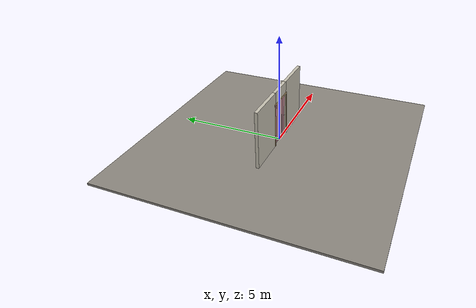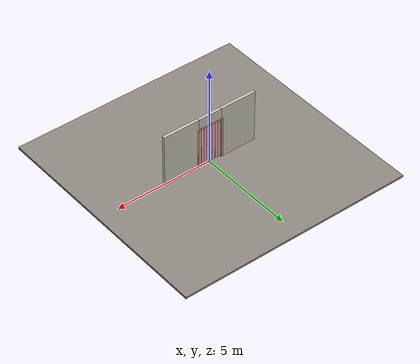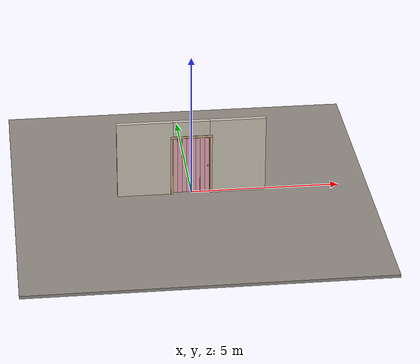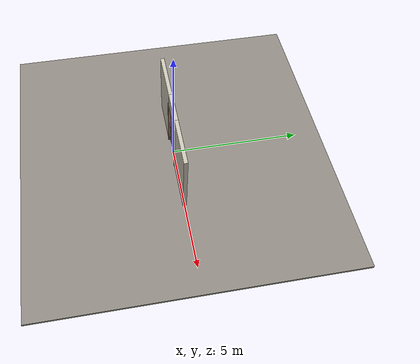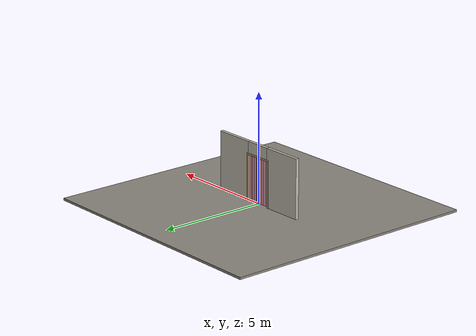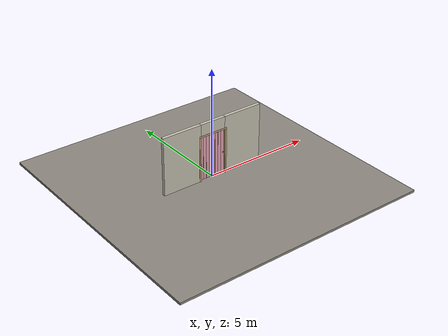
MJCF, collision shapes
<?xml version="1.0" ?>
<mujoco model="db0473_accordion_full">
  <compiler angle="radian" meshdir="../../hardware" texturedir="../../textures" autolimits="true" inertiafromgeom="false"/>
  <option timestep="0.002" integrator="implicitfast" cone="elliptic" impratio="10" noslip_iterations="3">
    <flag multiccd="enable"/>
  </option>
  <size memory="16M"/>
  <default>
    <geom condim="4" solref="0.005 1" solimp="0.95 0.99 0.001"/>
    <joint solreflimit="0.005 1" solimplimit="0.95 0.99 0.001"/>
    <tendon solreflimit="0.005 1"/>
    <equality solref="0.002 1"/>
  </default>
  <visual>
    <headlight ambient="0.4 0.4 0.4" diffuse="0.7 0.7 0.7" specular="0.2 0.2 0.2"/>
    <quality shadowsize="4096"/>
    <map znear="0.01" zfar="60"/>
  </visual>
  <asset>
    <mesh name="knob_13f7a2a65f" file="knob_13f7a2a65f.obj"/>
    <material name="mat_floor" rgba="0.55 0.53 0.5 1" specular="0.2" shininess="0.15" reflectance="0"/>
    <material name="mat_wall" rgba="0.78 0.76 0.7 1" specular="0.2" shininess="0.1" reflectance="0"/>
    <material name="mat_frame" rgba="0.82 0.7 0.5 1" specular="0.2" shininess="0.45" reflectance="0"/>
    <material name="mat_track" rgba="0.8 0.81 0.83 1" specular="0.8" shininess="0.6" reflectance="0.4"/>
    <material name="mat_hinge" rgba="0.65 0.66 0.68 1" specular="0.74" shininess="0.5" reflectance="0.36"/>
    <material name="mat_panel_0_0" rgba="0.9 0.65 0.7 1" specular="0.2" shininess="0.55" reflectance="0"/>
    <material name="mat_panel_0_1" rgba="0.9 0.65 0.7 1" specular="0.2" shininess="0.55" reflectance="0"/>
    <material name="mat_panel_0_2" rgba="0.9 0.65 0.7 1" specular="0.2" shininess="0.55" reflectance="0"/>
    <material name="mat_panel_0_3" rgba="0.9 0.65 0.7 1" specular="0.2" shininess="0.55" reflectance="0"/>
    <material name="mat_panel_0_4" rgba="0.9 0.65 0.7 1" specular="0.2" shininess="0.55" reflectance="0"/>
    <material name="mat_panel_0_5" rgba="0.9 0.65 0.7 1" specular="0.2" shininess="0.55" reflectance="0"/>
    <material name="mat_panel_0_6" rgba="0.9 0.65 0.7 1" specular="0.2" shininess="0.55" reflectance="0"/>
    <material name="mat_panel_0_7" rgba="0.9 0.65 0.7 1" specular="0.2" shininess="0.55" reflectance="0"/>
    <material name="mat_op_nickel_satin" rgba="0.72 0.7 0.66 1" specular="0.8" shininess="0.65" reflectance="0.4"/>
    <texture name="skybox" type="skybox" builtin="gradient" rgb1="0.6 0.7 0.85" rgb2="0.9 0.92 0.95" width="256" height="256"/>
  </asset>
  <worldbody>
    <light name="sun" pos="1.5 -2.5 4" dir="-0.3 0.5 -0.8" directional="true" diffuse="0.8 0.8 0.8" specular="0.3 0.3 0.3" castshadow="true"/>
    <light name="fill" pos="-1.5 2.5 3" dir="0.3 -0.5 -0.7" directional="true" diffuse="0.35 0.35 0.4" castshadow="false"/>
    <camera name="robot_view" pos="0 -2.581563 1.766338" xyaxes="1 0 0 0 0.26963 0.962964" fovy="52"/>
    <camera name="far_view" pos="0 2.581563 1.766338" xyaxes="-1 0 0 0 -0.26963 0.962964" fovy="52"/>
    <camera name="iso" pos="1.961988 -2.168513 2.179388" xyaxes="0.741536 0.670913 0 -0.242917 0.268487 0.932151" fovy="46"/>
    <camera name="detail_handle" pos="0.735309 -0.839 1.28" xyaxes="0.97561 0.219512 0 -0.070934 0.315262 0.94635" fovy="38"/>
    <geom name="floor" type="box" size="6 6 0.05" pos="0 0 -0.05" material="mat_floor" group="0" contype="1" conaffinity="1" friction="0.8 0.005 0.0001" density="2400"/>
    <geom name="wall_left" type="box" size="0.942 0.0725 1.35" pos="-1.558 0 1.35" material="mat_wall" group="0" contype="1" conaffinity="1" friction="0.6 0.005 0.0001" density="800"/>
    <geom name="wall_right" type="box" size="0.942 0.0725 1.35" pos="1.558 0 1.35" material="mat_wall" group="0" contype="1" conaffinity="1" friction="0.6 0.005 0.0001" density="800"/>
    <geom name="wall_header" type="box" size="0.616 0.0725 0.3065" pos="0 0 2.3935" material="mat_wall" group="0" contype="1" conaffinity="1" friction="0.6 0.005 0.0001" density="800"/>
    <geom name="jamb_hinge" type="box" size="0.0095 0.0725 1.0435" pos="-0.6255 0 1.0435" material="mat_frame" group="0" contype="1" conaffinity="1" friction="0.6 0.005 0.0001" density="400"/>
    <geom name="jamb_strike" type="box" size="0.0095 0.0725 1.0435" pos="0.6255 0 1.0435" material="mat_frame" group="0" contype="1" conaffinity="1" friction="0.6 0.005 0.0001" density="400"/>
    <geom name="stud_strike" type="box" size="0.015 0.0725 1.0435" pos="0.65 0 1.0435" material="mat_wall" group="0" contype="1" conaffinity="1" friction="0.6 0.005 0.0001" density="500"/>
    <geom name="jamb_head" type="box" size="0.65 0.0725 0.0095" pos="0.015 0 2.0965" material="mat_frame" group="0" contype="1" conaffinity="1" friction="0.6 0.005 0.0001" density="400"/>
    <geom name="head_stud" type="box" size="0.65 0.0725 0.015" pos="0.015 0 2.121" material="mat_wall" group="0" contype="1" conaffinity="1" friction="0.6 0.005 0.0001" density="500"/>
    <geom name="casing_l_n" type="box" size="0.035 0.008 1.053" pos="-0.665 -0.0805 1.0435" material="mat_frame" group="2" contype="0" conaffinity="0" density="400"/>
    <geom name="casing_r_n" type="box" size="0.035 0.008 1.053" pos="0.665 -0.0805 1.0435" material="mat_frame" group="2" contype="0" conaffinity="0" density="400"/>
    <geom name="casing_h_n" type="box" size="0.7 0.008 0.035" pos="0 -0.0805 2.136" material="mat_frame" group="2" contype="0" conaffinity="0" density="400"/>
    <geom name="casing_l_p" type="box" size="0.035 0.008 1.053" pos="-0.665 0.0805 1.0435" material="mat_frame" group="2" contype="0" conaffinity="0" density="400"/>
    <geom name="casing_r_p" type="box" size="0.035 0.008 1.053" pos="0.665 0.0805 1.0435" material="mat_frame" group="2" contype="0" conaffinity="0" density="400"/>
    <geom name="casing_h_p" type="box" size="0.7 0.008 0.035" pos="0 0.0805 2.136" material="mat_frame" group="2" contype="0" conaffinity="0" density="400"/>
    <geom name="fold_track" type="box" size="0.616 0.02 0.015" pos="0 0 2.072" material="mat_track" group="1" contype="0" conaffinity="0" density="2700"/>
    <site name="approach_point" pos="0 -1.5 0" quat="1 0 0 0" size="0.05" rgba="0.2 0.9 0.2 0.5" group="4"/>
    <site name="goal_point" pos="0 1.5 0" quat="1 0 0 0" size="0.05" rgba="0.2 0.9 0.2 0.5" group="4"/>
    <site name="door_plane_center" pos="0 0 1.0435" quat="1 0 0 0" size="0.02" rgba="0.2 0.9 0.2 0.5" group="4"/>
    <body name="panel_0_0" pos="-0.616 0 0">
      <inertial pos="0.077165 0 1.044017" mass="4.912699" quat="0.499757 0.499757 -0.500243 0.500243" diaginertia="0.008740227 1.71690872 1.725384514"/>
      <joint name="panel_0_0_hinge" type="hinge" axis="0 0 -1" pos="0.035 0 0" limited="true" range="0 1.48353" damping="1.011073" frictionloss="6.38875" armature="0.02"/>
      <geom name="panel_0_0_slab" type="box" size="0.0725 0.009 1.016" pos="0.0775 0 1.036" material="mat_panel_0_0" group="0" contype="1" conaffinity="1" friction="0.4 0.005 0.0001" density="1"/>
      <geom name="panel_0_0_pivot_pin" type="cylinder" size="0.008 0.0105" pos="0.035 0 2.0525" material="mat_hinge" group="1" contype="0" conaffinity="0" density="7850"/>
      <body name="panel_0_1" pos="0.152 0 0">
        <inertial pos="0.000407 0.008952 1.036" mass="5.128823" quat="0.522027 -0.476956 0.522027 0.476956" diaginertia="0.000262667 1.730396955 1.730605439"/>
        <joint name="panel_0_1_hinge" type="hinge" axis="0 0 -1" pos="0 0.009 0" limited="true" range="-3.141593 0" damping="0.2" frictionloss="0.1" armature="0.005"/>
        <geom name="panel_0_1_slab" type="box" size="0.074 0.009 1.016" pos="0.076 0 1.036" material="mat_panel_0_1" group="0" contype="1" conaffinity="1" friction="0.4 0.005 0.0001" density="1"/>
        <geom name="panel_0_1_knuckle" type="cylinder" size="0.0045 1.006" pos="0 0.009 1.036" material="mat_hinge" group="1" contype="0" conaffinity="0" density="7850"/>
        <body name="panel_0_2" pos="0.152 0 0">
          <inertial pos="0.000407 -0.008952 1.036" mass="5.128823" quat="0.476956 -0.522027 0.476956 0.522027" diaginertia="0.000262667 1.730396955 1.730605439"/>
          <joint name="panel_0_2_hinge" type="hinge" axis="0 0 -1" pos="0 -0.009 0" limited="true" range="0 3.141593" damping="0.2" frictionloss="0.1" armature="0.005"/>
          <geom name="panel_0_2_slab" type="box" size="0.074 0.009 1.016" pos="0.076 0 1.036" material="mat_panel_0_2" group="0" contype="1" conaffinity="1" friction="0.4 0.005 0.0001" density="1"/>
          <geom name="panel_0_2_knuckle" type="cylinder" size="0.0045 1.006" pos="0 -0.009 1.036" material="mat_hinge" group="1" contype="0" conaffinity="0" density="7850"/>
          <body name="panel_0_3" pos="0.152 0 0">
            <inertial pos="0.000407 0.008952 1.036" mass="5.128823" quat="0.522027 -0.476956 0.522027 0.476956" diaginertia="0.000262667 1.730396955 1.730605439"/>
            <joint name="panel_0_3_hinge" type="hinge" axis="0 0 -1" pos="0 0.009 0" limited="true" range="-3.141593 0" damping="0.2" frictionloss="0.1" armature="0.005"/>
            <geom name="panel_0_3_slab" type="box" size="0.074 0.009 1.016" pos="0.076 0 1.036" material="mat_panel_0_3" group="0" contype="1" conaffinity="1" friction="0.4 0.005 0.0001" density="1"/>
            <geom name="panel_0_3_knuckle" type="cylinder" size="0.0045 1.006" pos="0 0.009 1.036" material="mat_hinge" group="1" contype="0" conaffinity="0" density="7850"/>
            <body name="panel_0_4" pos="0.152 0 0">
              <inertial pos="0.000407 -0.008952 1.036" mass="5.128823" quat="0.476956 -0.522027 0.476956 0.522027" diaginertia="0.000262667 1.730396955 1.730605439"/>
              <joint name="panel_0_4_hinge" type="hinge" axis="0 0 -1" pos="0 -0.009 0" limited="true" range="0 3.141593" damping="0.2" frictionloss="0.1" armature="0.005"/>
              <geom name="panel_0_4_slab" type="box" size="0.074 0.009 1.016" pos="0.076 0 1.036" material="mat_panel_0_4" group="0" contype="1" conaffinity="1" friction="0.4 0.005 0.0001" density="1"/>
              <geom name="panel_0_4_knuckle" type="cylinder" size="0.0045 1.006" pos="0 -0.009 1.036" material="mat_hinge" group="1" contype="0" conaffinity="0" density="7850"/>
              <body name="panel_0_5" pos="0.152 0 0">
                <inertial pos="0.000407 0.008952 1.036" mass="5.128823" quat="0.522027 -0.476956 0.522027 0.476956" diaginertia="0.000262667 1.730396955 1.730605439"/>
                <joint name="panel_0_5_hinge" type="hinge" axis="0 0 -1" pos="0 0.009 0" limited="true" range="-3.141593 0" damping="0.2" frictionloss="0.1" armature="0.005"/>
                <geom name="panel_0_5_slab" type="box" size="0.074 0.009 1.016" pos="0.076 0 1.036" material="mat_panel_0_5" group="0" contype="1" conaffinity="1" friction="0.4 0.005 0.0001" density="1"/>
                <geom name="panel_0_5_knuckle" type="cylinder" size="0.0045 1.006" pos="0 0.009 1.036" material="mat_hinge" group="1" contype="0" conaffinity="0" density="7850"/>
                <body name="panel_0_6" pos="0.152 0 0">
                  <inertial pos="0.000407 -0.008952 1.036" mass="5.128823" quat="0.476956 -0.522027 0.476956 0.522027" diaginertia="0.000262667 1.730396955 1.730605439"/>
                  <joint name="panel_0_6_hinge" type="hinge" axis="0 0 -1" pos="0 -0.009 0" limited="true" range="0 3.141593" damping="0.2" frictionloss="0.1" armature="0.005"/>
                  <geom name="panel_0_6_slab" type="box" size="0.074 0.009 1.016" pos="0.076 0 1.036" material="mat_panel_0_6" group="0" contype="1" conaffinity="1" friction="0.4 0.005 0.0001" density="1"/>
                  <geom name="panel_0_6_knuckle" type="cylinder" size="0.0045 1.006" pos="0 -0.009 1.036" material="mat_hinge" group="1" contype="0" conaffinity="0" density="7850"/>
                  <body name="panel_0_7" pos="0.152 0 0">
                    <inertial pos="0.014034 0.004325 1.031423" mass="5.421673" quat="0.573658 0.41254 -0.574289 0.413425" diaginertia="0.008080228 1.597585911 1.605406256"/>
                    <joint name="panel_0_7_hinge" type="hinge" axis="0 0 -1" pos="0 0.009 0" limited="true" range="-3.141593 0" damping="0.2" frictionloss="0.1" armature="0.005"/>
                    <geom name="panel_0_7_slab" type="box" size="0.077655 0.009 1.016" pos="0.079655 0 1.036" material="mat_panel_0_7" group="0" contype="1" conaffinity="1" friction="0.4 0.005 0.0001" density="1"/>
                    <geom name="panel_0_7_knuckle" type="cylinder" size="0.0045 1.006" pos="0 0.009 1.036" material="mat_hinge" group="1" contype="0" conaffinity="0" density="7850"/>
                    <geom name="panel_0_7_knob" type="mesh" mesh="knob_13f7a2a65f" pos="0.107309 -0.009 1" quat="0.707107 0.707107 0 0" material="mat_op_nickel_satin" group="1" contype="0" conaffinity="0" density="3000"/>
                    <geom name="panel_0_7_knob_col" type="sphere" size="0.016" pos="0.107309 -0.039 1" material="mat_op_nickel_satin" group="0" contype="1" conaffinity="1" friction="0.6 0.005 0.0001" density="3000"/>
                    <geom name="panel_0_7_knob_rose" type="cylinder" size="0.022 0.005" pos="0.107309 -0.014 1" quat="0.707107 -0.707107 0 0" material="mat_op_nickel_satin" group="1" contype="0" conaffinity="0" density="3000"/>
                    <site name="panel_0_7_grip" pos="0.107309 -0.039 1" quat="1 0 0 0" size="0.012" rgba="0.2 0.9 0.2 0.5" group="4"/>
                  </body>
                </body>
              </body>
            </body>
          </body>
        </body>
      </body>
    </body>
  </worldbody>
  <equality>
    <joint name="panel_0_1_couple" joint1="panel_0_1_hinge" joint2="panel_0_0_hinge" polycoef="0 -2 0 0 0" active="true"/>
    <joint name="panel_0_2_couple" joint1="panel_0_2_hinge" joint2="panel_0_0_hinge" polycoef="0 2 0 0 0" active="true"/>
    <joint name="panel_0_3_couple" joint1="panel_0_3_hinge" joint2="panel_0_0_hinge" polycoef="0 -2 0 0 0" active="true"/>
    <joint name="panel_0_4_couple" joint1="panel_0_4_hinge" joint2="panel_0_0_hinge" polycoef="0 2 0 0 0" active="true"/>
    <joint name="panel_0_5_couple" joint1="panel_0_5_hinge" joint2="panel_0_0_hinge" polycoef="0 -2 0 0 0" active="true"/>
    <joint name="panel_0_6_couple" joint1="panel_0_6_hinge" joint2="panel_0_0_hinge" polycoef="0 2 0 0 0" active="true"/>
    <joint name="panel_0_7_couple" joint1="panel_0_7_hinge" joint2="panel_0_0_hinge" polycoef="0 -2 0 0 0" active="true"/>
  </equality>
  <sensor>
    <jointpos name="panel_0_0_hinge_pos" joint="panel_0_0_hinge"/>
    <jointvel name="panel_0_0_hinge_vel" joint="panel_0_0_hinge"/>
    <jointpos name="panel_0_1_hinge_pos" joint="panel_0_1_hinge"/>
    <jointvel name="panel_0_1_hinge_vel" joint="panel_0_1_hinge"/>
    <jointpos name="panel_0_2_hinge_pos" joint="panel_0_2_hinge"/>
    <jointvel name="panel_0_2_hinge_vel" joint="panel_0_2_hinge"/>
    <jointpos name="panel_0_3_hinge_pos" joint="panel_0_3_hinge"/>
    <jointvel name="panel_0_3_hinge_vel" joint="panel_0_3_hinge"/>
    <jointpos name="panel_0_4_hinge_pos" joint="panel_0_4_hinge"/>
    <jointvel name="panel_0_4_hinge_vel" joint="panel_0_4_hinge"/>
    <jointpos name="panel_0_5_hinge_pos" joint="panel_0_5_hinge"/>
    <jointvel name="panel_0_5_hinge_vel" joint="panel_0_5_hinge"/>
    <jointpos name="panel_0_6_hinge_pos" joint="panel_0_6_hinge"/>
    <jointvel name="panel_0_6_hinge_vel" joint="panel_0_6_hinge"/>
    <jointpos name="panel_0_7_hinge_pos" joint="panel_0_7_hinge"/>
    <jointvel name="panel_0_7_hinge_vel" joint="panel_0_7_hinge"/>
  </sensor>
</mujoco>
